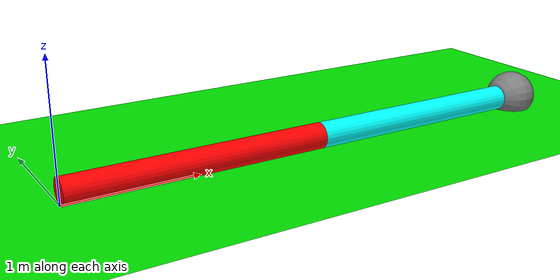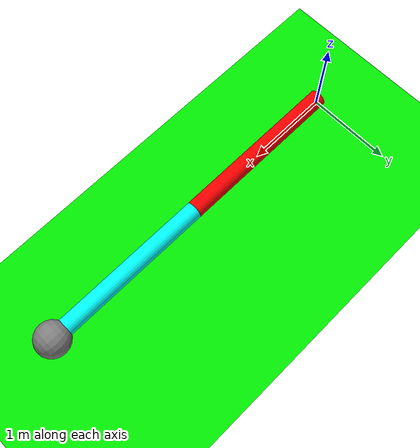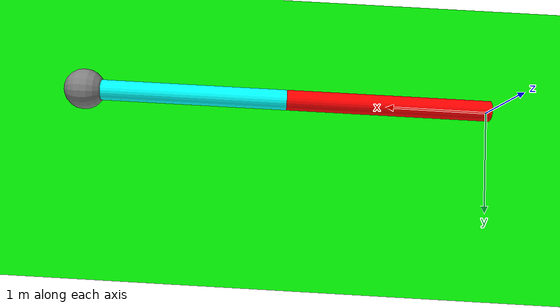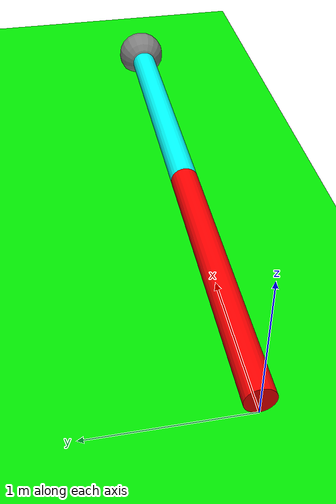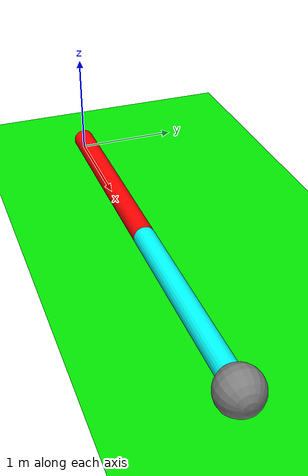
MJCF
<mujoco>
    <option gravity='0 0 0'/>

    <visual>
        <headlight diffuse='0.5 0.5 0.5'/>
    </visual>

    <worldbody>
        <geom type="plane" size="5 5 0.1" rgba="0 .9 0 1"/>
        <body pos='1 0 0.1' euler='0 90 0'>
            <joint type='hinge' pos='0 0 -1' axis='-1 0 0'/>
            <geom type="cylinder" size=".1 1" rgba="1 0 0 1"/>
            <body pos='0 0 2' euler='0 0 0'>
                <joint type='hinge' pos='0 0 -1' axis='-1 0 0'/>
                <geom type="cylinder" size=".1 1" rgba="0 1 1 1"/>
                <site name = 'tip' type="sphere" size="0.2" rgba="0.5 0.5 0.5 1" pos="0 0 1"/>
            </body>
        </body>
    </worldbody>
    <sensor>
        <framepos name='tip_sense' objname="tip" objtype="site"/>
    </sensor>

</mujoco>
